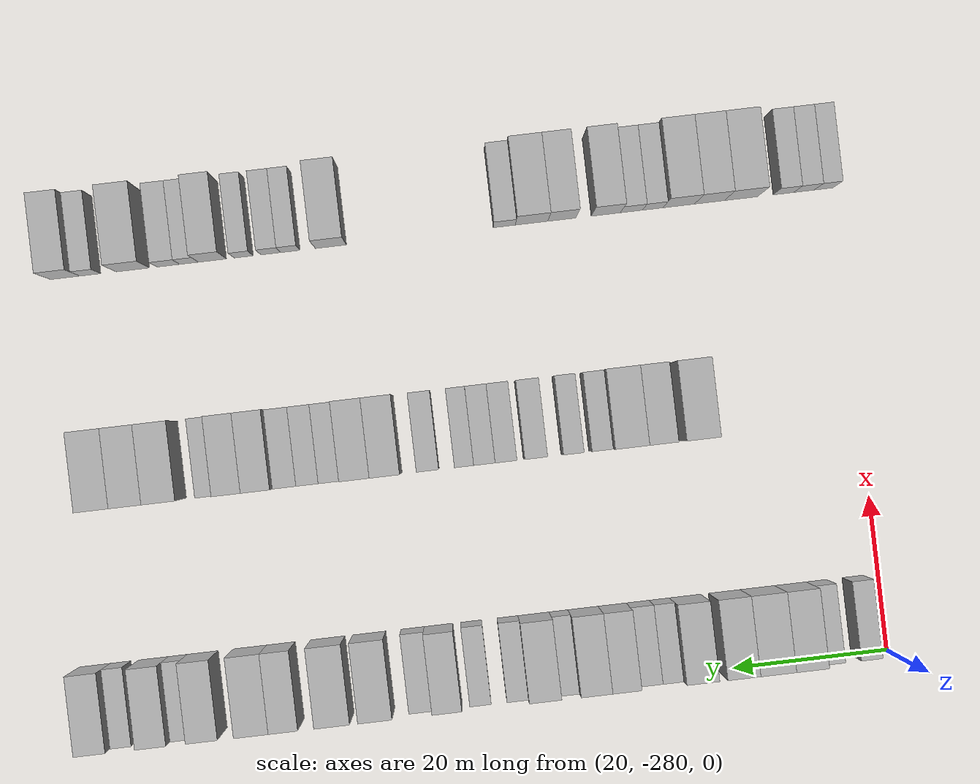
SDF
<sdf version="1.6">
 <world name="default">
  <model name="building_1">
   <static>1</static>
   <pose>25.0000 -276.6459 0 0.000000 0.000000 0.000000</pose>
   <link name="link">
    <pose>0 0 3.00 0 0 0</pose>
    <collision name="collision"><geometry><box><size>10.0000 2.7081 6.0000</size></box></geometry></collision>
    <visual name="visual">
     <cast_shadows>0</cast_shadows>
     <geometry><box><size>10.0000 2.7081 6.0000</size></box></geometry>
     <material>
      <script>
       <uri>model://HANNAS_wall/materials/scripts</uri>
       <uri>model://HANNAS_wall/materials/textures</uri>
       <name>vrc/HANNAS_wall</name>
      </script>
     </material>
    </visual>
   </link>
  </model>
  <model name="building_2">
   <static>1</static>
   <pose>25.0000 -271.9616 0 0.000000 0.000000 0.000000</pose>
   <link name="link">
    <pose>0 0 3.00 0 0 0</pose>
    <collision name="collision"><geometry><box><size>10.0000 2.6605 6.0000</size></box></geometry></collision>
    <visual name="visual">
     <cast_shadows>0</cast_shadows>
     <geometry><box><size>10.0000 2.6605 6.0000</size></box></geometry>
     <material>
      <script>
       <uri>model://HANNAS_wall/materials/scripts</uri>
       <uri>model://HANNAS_wall/materials/textures</uri>
       <name>vrc/HANNAS_wall</name>
      </script>
     </material>
    </visual>
   </link>
  </model>
  <model name="building_3">
   <static>1</static>
   <pose>25.0000 -268.5851 0 0.000000 0.000000 0.000000</pose>
   <link name="link">
    <pose>0 0 4.50 0 0 0</pose>
    <collision name="collision"><geometry><box><size>10.0000 4.0925 9.0000</size></box></geometry></collision>
    <visual name="visual">
     <cast_shadows>0</cast_shadows>
     <geometry><box><size>10.0000 4.0925 9.0000</size></box></geometry>
     <material>
      <script>
       <uri>model://HANNAS_wall/materials/scripts</uri>
       <uri>model://HANNAS_wall/materials/textures</uri>
       <name>vrc/HANNAS_wall</name>
      </script>
     </material>
    </visual>
   </link>
  </model>
  <model name="building_4">
   <static>1</static>
   <pose>25.0000 -264.3057 0 0.000000 0.000000 0.000000</pose>
   <link name="link">
    <pose>0 0 4.50 0 0 0</pose>
    <collision name="collision"><geometry><box><size>10.0000 4.4662 9.0000</size></box></geometry></collision>
    <visual name="visual">
     <cast_shadows>0</cast_shadows>
     <geometry><box><size>10.0000 4.4662 9.0000</size></box></geometry>
     <material>
      <script>
       <uri>model://HANNAS_wall/materials/scripts</uri>
       <uri>model://HANNAS_wall/materials/textures</uri>
       <name>vrc/HANNAS_wall</name>
      </script>
     </material>
    </visual>
   </link>
  </model>
  <model name="building_5">
   <static>1</static>
   <pose>25.0000 -260.0190 0 0.000000 0.000000 0.000000</pose>
   <link name="link">
    <pose>0 0 4.50 0 0 0</pose>
    <collision name="collision"><geometry><box><size>10.0000 4.1072 9.0000</size></box></geometry></collision>
    <visual name="visual">
     <cast_shadows>0</cast_shadows>
     <geometry><box><size>10.0000 4.1072 9.0000</size></box></geometry>
     <material>
      <script>
       <uri>model://HANNAS_wall/materials/scripts</uri>
       <uri>model://HANNAS_wall/materials/textures</uri>
       <name>vrc/HANNAS_wall</name>
      </script>
     </material>
    </visual>
   </link>
  </model>
  <model name="building_6">
   <static>1</static>
   <pose>25.0000 -254.9210 0 0.000000 0.000000 0.000000</pose>
   <link name="link">
    <pose>0 0 4.50 0 0 0</pose>
    <collision name="collision"><geometry><box><size>10.0000 4.0887 9.0000</size></box></geometry></collision>
    <visual name="visual">
     <cast_shadows>0</cast_shadows>
     <geometry><box><size>10.0000 4.0887 9.0000</size></box></geometry>
     <material>
      <script>
       <uri>model://HANNAS_wall/materials/scripts</uri>
       <uri>model://HANNAS_wall/materials/textures</uri>
       <name>vrc/HANNAS_wall</name>
      </script>
     </material>
    </visual>
   </link>
  </model>
  <model name="building_7">
   <static>1</static>
   <pose>25.0000 -251.5655 0 0.000000 0.000000 0.000000</pose>
   <link name="link">
    <pose>0 0 3.00 0 0 0</pose>
    <collision name="collision"><geometry><box><size>10.0000 2.6223 6.0000</size></box></geometry></collision>
    <visual name="visual">
     <cast_shadows>0</cast_shadows>
     <geometry><box><size>10.0000 2.6223 6.0000</size></box></geometry>
     <material>
      <script>
       <uri>model://HANNAS_wall/materials/scripts</uri>
       <uri>model://HANNAS_wall/materials/textures</uri>
       <name>vrc/HANNAS_wall</name>
      </script>
     </material>
    </visual>
   </link>
  </model>
  <model name="building_8">
   <static>1</static>
   <pose>25.0000 -248.7749 0 0.000000 0.000000 0.000000</pose>
   <link name="link">
    <pose>0 0 3.00 0 0 0</pose>
    <collision name="collision"><geometry><box><size>10.0000 2.9590 6.0000</size></box></geometry></collision>
    <visual name="visual">
     <cast_shadows>0</cast_shadows>
     <geometry><box><size>10.0000 2.9590 6.0000</size></box></geometry>
     <material>
      <script>
       <uri>model://HANNAS_wall/materials/scripts</uri>
       <uri>model://HANNAS_wall/materials/textures</uri>
       <name>vrc/HANNAS_wall</name>
      </script>
     </material>
    </visual>
   </link>
  </model>
  <model name="building_9">
   <static>1</static>
   <pose>25.0000 -245.4770 0 0.000000 0.000000 0.000000</pose>
   <link name="link">
    <pose>0 0 4.50 0 0 0</pose>
    <collision name="collision"><geometry><box><size>10.0000 3.6368 9.0000</size></box></geometry></collision>
    <visual name="visual">
     <cast_shadows>0</cast_shadows>
     <geometry><box><size>10.0000 3.6368 9.0000</size></box></geometry>
     <material>
      <script>
       <uri>model://HANNAS_wall/materials/scripts</uri>
       <uri>model://HANNAS_wall/materials/textures</uri>
       <name>vrc/HANNAS_wall</name>
      </script>
     </material>
    </visual>
   </link>
  </model>
  <model name="building_10">
   <static>1</static>
   <pose>25.0000 -241.6907 0 0.000000 0.000000 0.000000</pose>
   <link name="link">
    <pose>0 0 4.50 0 0 0</pose>
    <collision name="collision"><geometry><box><size>10.0000 3.9358 9.0000</size></box></geometry></collision>
    <visual name="visual">
     <cast_shadows>0</cast_shadows>
     <geometry><box><size>10.0000 3.9358 9.0000</size></box></geometry>
     <material>
      <script>
       <uri>model://HANNAS_wall/materials/scripts</uri>
       <uri>model://HANNAS_wall/materials/textures</uri>
       <name>vrc/HANNAS_wall</name>
      </script>
     </material>
    </visual>
   </link>
  </model>
  <model name="building_11">
   <static>1</static>
   <pose>25.0000 -238.5181 0 0.000000 0.000000 0.000000</pose>
   <link name="link">
    <pose>0 0 3.00 0 0 0</pose>
    <collision name="collision"><geometry><box><size>10.0000 2.4093 6.0000</size></box></geometry></collision>
    <visual name="visual">
     <cast_shadows>0</cast_shadows>
     <geometry><box><size>10.0000 2.4093 6.0000</size></box></geometry>
     <material>
      <script>
       <uri>model://HANNAS_wall/materials/scripts</uri>
       <uri>model://HANNAS_wall/materials/textures</uri>
       <name>vrc/HANNAS_wall</name>
      </script>
     </material>
    </visual>
   </link>
  </model>
  <model name="building_12">
   <static>1</static>
   <pose>25.0000 -235.2913 0 0.000000 0.000000 0.000000</pose>
   <link name="link">
    <pose>0 0 4.50 0 0 0</pose>
    <collision name="collision"><geometry><box><size>10.0000 4.0443 9.0000</size></box></geometry></collision>
    <visual name="visual">
     <cast_shadows>0</cast_shadows>
     <geometry><box><size>10.0000 4.0443 9.0000</size></box></geometry>
     <material>
      <script>
       <uri>model://HANNAS_wall/materials/scripts</uri>
       <uri>model://HANNAS_wall/materials/textures</uri>
       <name>vrc/HANNAS_wall</name>
      </script>
     </material>
    </visual>
   </link>
  </model>
  <model name="building_13">
   <static>1</static>
   <pose>25.0000 -231.9161 0 0.000000 0.000000 0.000000</pose>
   <link name="link">
    <pose>0 0 3.00 0 0 0</pose>
    <collision name="collision"><geometry><box><size>10.0000 2.7061 6.0000</size></box></geometry></collision>
    <visual name="visual">
     <cast_shadows>0</cast_shadows>
     <geometry><box><size>10.0000 2.7061 6.0000</size></box></geometry>
     <material>
      <script>
       <uri>model://HANNAS_wall/materials/scripts</uri>
       <uri>model://HANNAS_wall/materials/textures</uri>
       <name>vrc/HANNAS_wall</name>
      </script>
     </material>
    </visual>
   </link>
  </model>
  <model name="building_14">
   <static>1</static>
   <pose>25.0000 -227.2116 0 0.000000 0.000000 0.000000</pose>
   <link name="link">
    <pose>0 0 3.00 0 0 0</pose>
    <collision name="collision"><geometry><box><size>10.0000 2.7027 6.0000</size></box></geometry></collision>
    <visual name="visual">
     <cast_shadows>0</cast_shadows>
     <geometry><box><size>10.0000 2.7027 6.0000</size></box></geometry>
     <material>
      <script>
       <uri>model://HANNAS_wall/materials/scripts</uri>
       <uri>model://HANNAS_wall/materials/textures</uri>
       <name>vrc/HANNAS_wall</name>
      </script>
     </material>
    </visual>
   </link>
  </model>
  <model name="building_15">
   <static>1</static>
   <pose>25.0000 -222.9976 0 0.000000 0.000000 0.000000</pose>
   <link name="link">
    <pose>0 0 4.50 0 0 0</pose>
    <collision name="collision"><geometry><box><size>10.0000 3.7254 9.0000</size></box></geometry></collision>
    <visual name="visual">
     <cast_shadows>0</cast_shadows>
     <geometry><box><size>10.0000 3.7254 9.0000</size></box></geometry>
     <material>
      <script>
       <uri>model://HANNAS_wall/materials/scripts</uri>
       <uri>model://HANNAS_wall/materials/textures</uri>
       <name>vrc/HANNAS_wall</name>
      </script>
     </material>
    </visual>
   </link>
  </model>
  <model name="building_16">
   <static>1</static>
   <pose>25.0000 -219.6483 0 0.000000 0.000000 0.000000</pose>
   <link name="link">
    <pose>0 0 3.00 0 0 0</pose>
    <collision name="collision"><geometry><box><size>10.0000 2.9733 6.0000</size></box></geometry></collision>
    <visual name="visual">
     <cast_shadows>0</cast_shadows>
     <geometry><box><size>10.0000 2.9733 6.0000</size></box></geometry>
     <material>
      <script>
       <uri>model://HANNAS_wall/materials/scripts</uri>
       <uri>model://HANNAS_wall/materials/textures</uri>
       <name>vrc/HANNAS_wall</name>
      </script>
     </material>
    </visual>
   </link>
  </model>
  <model name="building_17">
   <static>1</static>
   <pose>25.0000 -214.0251 0 0.000000 0.000000 0.000000</pose>
   <link name="link">
    <pose>0 0 4.50 0 0 0</pose>
    <collision name="collision"><geometry><box><size>10.0000 4.2729 9.0000</size></box></geometry></collision>
    <visual name="visual">
     <cast_shadows>0</cast_shadows>
     <geometry><box><size>10.0000 4.2729 9.0000</size></box></geometry>
     <material>
      <script>
       <uri>model://HANNAS_wall/materials/scripts</uri>
       <uri>model://HANNAS_wall/materials/textures</uri>
       <name>vrc/HANNAS_wall</name>
      </script>
     </material>
    </visual>
   </link>
  </model>
  <model name="building_18">
   <static>1</static>
   <pose>25.0000 -208.6609 0 0.000000 0.000000 0.000000</pose>
   <link name="link">
    <pose>0 0 4.50 0 0 0</pose>
    <collision name="collision"><geometry><box><size>10.0000 4.4556 9.0000</size></box></geometry></collision>
    <visual name="visual">
     <cast_shadows>0</cast_shadows>
     <geometry><box><size>10.0000 4.4556 9.0000</size></box></geometry>
     <material>
      <script>
       <uri>model://HANNAS_wall/materials/scripts</uri>
       <uri>model://HANNAS_wall/materials/textures</uri>
       <name>vrc/HANNAS_wall</name>
      </script>
     </material>
    </visual>
   </link>
  </model>
  <model name="building_19">
   <static>1</static>
   <pose>25.0000 -202.5923 0 0.000000 0.000000 0.000000</pose>
   <link name="link">
    <pose>0 0 4.50 0 0 0</pose>
    <collision name="collision"><geometry><box><size>10.0000 3.6817 9.0000</size></box></geometry></collision>
    <visual name="visual">
     <cast_shadows>0</cast_shadows>
     <geometry><box><size>10.0000 3.6817 9.0000</size></box></geometry>
     <material>
      <script>
       <uri>model://HANNAS_wall/materials/scripts</uri>
       <uri>model://HANNAS_wall/materials/textures</uri>
       <name>vrc/HANNAS_wall</name>
      </script>
     </material>
    </visual>
   </link>
  </model>
  <model name="building_20">
   <static>1</static>
   <pose>25.0000 -198.5943 0 0.000000 0.000000 0.000000</pose>
   <link name="link">
    <pose>0 0 4.50 0 0 0</pose>
    <collision name="collision"><geometry><box><size>10.0000 4.3144 9.0000</size></box></geometry></collision>
    <visual name="visual">
     <cast_shadows>0</cast_shadows>
     <geometry><box><size>10.0000 4.3144 9.0000</size></box></geometry>
     <material>
      <script>
       <uri>model://HANNAS_wall/materials/scripts</uri>
       <uri>model://HANNAS_wall/materials/textures</uri>
       <name>vrc/HANNAS_wall</name>
      </script>
     </material>
    </visual>
   </link>
  </model>
  <model name="building_21">
   <static>1</static>
   <pose>25.0000 -192.4441 0 0.000000 0.000000 0.000000</pose>
   <link name="link">
    <pose>0 0 4.50 0 0 0</pose>
    <collision name="collision"><geometry><box><size>10.0000 3.9859 9.0000</size></box></geometry></collision>
    <visual name="visual">
     <cast_shadows>0</cast_shadows>
     <geometry><box><size>10.0000 3.9859 9.0000</size></box></geometry>
     <material>
      <script>
       <uri>model://HANNAS_wall/materials/scripts</uri>
       <uri>model://HANNAS_wall/materials/textures</uri>
       <name>vrc/HANNAS_wall</name>
      </script>
     </material>
    </visual>
   </link>
  </model>
  <model name="building_22">
   <static>1</static>
   <pose>25.0000 -189.2357 0 0.000000 0.000000 0.000000</pose>
   <link name="link">
    <pose>0 0 3.00 0 0 0</pose>
    <collision name="collision"><geometry><box><size>10.0000 2.4310 6.0000</size></box></geometry></collision>
    <visual name="visual">
     <cast_shadows>0</cast_shadows>
     <geometry><box><size>10.0000 2.4310 6.0000</size></box></geometry>
     <material>
      <script>
       <uri>model://HANNAS_wall/materials/scripts</uri>
       <uri>model://HANNAS_wall/materials/textures</uri>
       <name>vrc/HANNAS_wall</name>
      </script>
     </material>
    </visual>
   </link>
  </model>
  <model name="building_23">
   <static>1</static>
   <pose>25.0000 -186.0730 0 0.000000 0.000000 0.000000</pose>
   <link name="link">
    <pose>0 0 4.50 0 0 0</pose>
    <collision name="collision"><geometry><box><size>10.0000 3.8945 9.0000</size></box></geometry></collision>
    <visual name="visual">
     <cast_shadows>0</cast_shadows>
     <geometry><box><size>10.0000 3.8945 9.0000</size></box></geometry>
     <material>
      <script>
       <uri>model://HANNAS_wall/materials/scripts</uri>
       <uri>model://HANNAS_wall/materials/textures</uri>
       <name>vrc/HANNAS_wall</name>
      </script>
     </material>
    </visual>
   </link>
  </model>
  <model name="building_24">
   <static>1</static>
   <pose>25.0000 -181.7934 0 0.000000 0.000000 0.000000</pose>
   <link name="link">
    <pose>0 0 3.00 0 0 0</pose>
    <collision name="collision"><geometry><box><size>10.0000 2.6648 6.0000</size></box></geometry></collision>
    <visual name="visual">
     <cast_shadows>0</cast_shadows>
     <geometry><box><size>10.0000 2.6648 6.0000</size></box></geometry>
     <material>
      <script>
       <uri>model://HANNAS_wall/materials/scripts</uri>
       <uri>model://HANNAS_wall/materials/textures</uri>
       <name>vrc/HANNAS_wall</name>
      </script>
     </material>
    </visual>
   </link>
  </model>
  <model name="building_25">
   <static>1</static>
   <pose>25.0000 -178.4690 0 0.000000 0.000000 0.000000</pose>
   <link name="link">
    <pose>0 0 4.50 0 0 0</pose>
    <collision name="collision"><geometry><box><size>10.0000 3.9839 9.0000</size></box></geometry></collision>
    <visual name="visual">
     <cast_shadows>0</cast_shadows>
     <geometry><box><size>10.0000 3.9839 9.0000</size></box></geometry>
     <material>
      <script>
       <uri>model://HANNAS_wall/materials/scripts</uri>
       <uri>model://HANNAS_wall/materials/textures</uri>
       <name>vrc/HANNAS_wall</name>
      </script>
     </material>
    </visual>
   </link>
  </model>
  <model name="building_143">
   <static>1</static>
   <pose>55.0000 -258.5437 0 0.000000 0.000000 0.000000</pose>
   <link name="link">
    <pose>0 0 4.50 0 0 0</pose>
    <collision name="collision"><geometry><box><size>10.0000 4.3042 9.0000</size></box></geometry></collision>
    <visual name="visual">
     <cast_shadows>0</cast_shadows>
     <geometry><box><size>10.0000 4.3042 9.0000</size></box></geometry>
     <material>
      <script>
       <uri>model://HANNAS_wall/materials/scripts</uri>
       <uri>model://HANNAS_wall/materials/textures</uri>
       <name>vrc/HANNAS_wall</name>
      </script>
     </material>
    </visual>
   </link>
  </model>
  <model name="building_144">
   <static>1</static>
   <pose>55.0000 -253.5834 0 0.000000 0.000000 0.000000</pose>
   <link name="link">
    <pose>0 0 4.50 0 0 0</pose>
    <collision name="collision"><geometry><box><size>10.0000 3.6164 9.0000</size></box></geometry></collision>
    <visual name="visual">
     <cast_shadows>0</cast_shadows>
     <geometry><box><size>10.0000 3.6164 9.0000</size></box></geometry>
     <material>
      <script>
       <uri>model://HANNAS_wall/materials/scripts</uri>
       <uri>model://HANNAS_wall/materials/textures</uri>
       <name>vrc/HANNAS_wall</name>
      </script>
     </material>
    </visual>
   </link>
  </model>
  <model name="building_145">
   <static>1</static>
   <pose>55.0000 -249.6335 0 0.000000 0.000000 0.000000</pose>
   <link name="link">
    <pose>0 0 4.50 0 0 0</pose>
    <collision name="collision"><geometry><box><size>10.0000 4.2835 9.0000</size></box></geometry></collision>
    <visual name="visual">
     <cast_shadows>0</cast_shadows>
     <geometry><box><size>10.0000 4.2835 9.0000</size></box></geometry>
     <material>
      <script>
       <uri>model://HANNAS_wall/materials/scripts</uri>
       <uri>model://HANNAS_wall/materials/textures</uri>
       <name>vrc/HANNAS_wall</name>
      </script>
     </material>
    </visual>
   </link>
  </model>
  <model name="building_146">
   <static>1</static>
   <pose>55.0000 -246.1513 0 0.000000 0.000000 0.000000</pose>
   <link name="link">
    <pose>0 0 3.00 0 0 0</pose>
    <collision name="collision"><geometry><box><size>10.0000 2.6807 6.0000</size></box></geometry></collision>
    <visual name="visual">
     <cast_shadows>0</cast_shadows>
     <geometry><box><size>10.0000 2.6807 6.0000</size></box></geometry>
     <material>
      <script>
       <uri>model://HANNAS_wall/materials/scripts</uri>
       <uri>model://HANNAS_wall/materials/textures</uri>
       <name>vrc/HANNAS_wall</name>
      </script>
     </material>
    </visual>
   </link>
  </model>
  <model name="building_147">
   <static>1</static>
   <pose>55.0000 -242.5061 0 0.000000 0.000000 0.000000</pose>
   <link name="link">
    <pose>0 0 3.00 0 0 0</pose>
    <collision name="collision"><geometry><box><size>10.0000 2.6097 6.0000</size></box></geometry></collision>
    <visual name="visual">
     <cast_shadows>0</cast_shadows>
     <geometry><box><size>10.0000 2.6097 6.0000</size></box></geometry>
     <material>
      <script>
       <uri>model://HANNAS_wall/materials/scripts</uri>
       <uri>model://HANNAS_wall/materials/textures</uri>
       <name>vrc/HANNAS_wall</name>
      </script>
     </material>
    </visual>
   </link>
  </model>
  <model name="building_148">
   <static>1</static>
   <pose>55.0000 -237.7639 0 0.000000 0.000000 0.000000</pose>
   <link name="link">
    <pose>0 0 3.00 0 0 0</pose>
    <collision name="collision"><geometry><box><size>10.0000 2.8748 6.0000</size></box></geometry></collision>
    <visual name="visual">
     <cast_shadows>0</cast_shadows>
     <geometry><box><size>10.0000 2.8748 6.0000</size></box></geometry>
     <material>
      <script>
       <uri>model://HANNAS_wall/materials/scripts</uri>
       <uri>model://HANNAS_wall/materials/textures</uri>
       <name>vrc/HANNAS_wall</name>
      </script>
     </material>
    </visual>
   </link>
  </model>
  <model name="building_149">
   <static>1</static>
   <pose>55.0000 -233.9491 0 0.000000 0.000000 0.000000</pose>
   <link name="link">
    <pose>0 0 3.00 0 0 0</pose>
    <collision name="collision"><geometry><box><size>10.0000 2.7548 6.0000</size></box></geometry></collision>
    <visual name="visual">
     <cast_shadows>0</cast_shadows>
     <geometry><box><size>10.0000 2.7548 6.0000</size></box></geometry>
     <material>
      <script>
       <uri>model://HANNAS_wall/materials/scripts</uri>
       <uri>model://HANNAS_wall/materials/textures</uri>
       <name>vrc/HANNAS_wall</name>
      </script>
     </material>
    </visual>
   </link>
  </model>
  <model name="building_150">
   <static>1</static>
   <pose>55.0000 -231.2156 0 0.000000 0.000000 0.000000</pose>
   <link name="link">
    <pose>0 0 3.00 0 0 0</pose>
    <collision name="collision"><geometry><box><size>10.0000 2.7122 6.0000</size></box></geometry></collision>
    <visual name="visual">
     <cast_shadows>0</cast_shadows>
     <geometry><box><size>10.0000 2.7122 6.0000</size></box></geometry>
     <material>
      <script>
       <uri>model://HANNAS_wall/materials/scripts</uri>
       <uri>model://HANNAS_wall/materials/textures</uri>
       <name>vrc/HANNAS_wall</name>
      </script>
     </material>
    </visual>
   </link>
  </model>
  <model name="building_151">
   <static>1</static>
   <pose>55.0000 -228.6480 0 0.000000 0.000000 0.000000</pose>
   <link name="link">
    <pose>0 0 3.00 0 0 0</pose>
    <collision name="collision"><geometry><box><size>10.0000 2.4229 6.0000</size></box></geometry></collision>
    <visual name="visual">
     <cast_shadows>0</cast_shadows>
     <geometry><box><size>10.0000 2.4229 6.0000</size></box></geometry>
     <material>
      <script>
       <uri>model://HANNAS_wall/materials/scripts</uri>
       <uri>model://HANNAS_wall/materials/textures</uri>
       <name>vrc/HANNAS_wall</name>
      </script>
     </material>
    </visual>
   </link>
  </model>
  <model name="building_152">
   <static>1</static>
   <pose>55.0000 -224.0296 0 0.000000 0.000000 0.000000</pose>
   <link name="link">
    <pose>0 0 3.00 0 0 0</pose>
    <collision name="collision"><geometry><box><size>10.0000 2.8141 6.0000</size></box></geometry></collision>
    <visual name="visual">
     <cast_shadows>0</cast_shadows>
     <geometry><box><size>10.0000 2.8141 6.0000</size></box></geometry>
     <material>
      <script>
       <uri>model://HANNAS_wall/materials/scripts</uri>
       <uri>model://HANNAS_wall/materials/textures</uri>
       <name>vrc/HANNAS_wall</name>
      </script>
     </material>
    </visual>
   </link>
  </model>
  <model name="building_153">
   <static>1</static>
   <pose>55.0000 -218.7284 0 0.000000 0.000000 0.000000</pose>
   <link name="link">
    <pose>0 0 4.50 0 0 0</pose>
    <collision name="collision"><geometry><box><size>10.0000 3.7883 9.0000</size></box></geometry></collision>
    <visual name="visual">
     <cast_shadows>0</cast_shadows>
     <geometry><box><size>10.0000 3.7883 9.0000</size></box></geometry>
     <material>
      <script>
       <uri>model://HANNAS_wall/materials/scripts</uri>
       <uri>model://HANNAS_wall/materials/textures</uri>
       <name>vrc/HANNAS_wall</name>
      </script>
     </material>
    </visual>
   </link>
  </model>
  <model name="building_154">
   <static>1</static>
   <pose>55.0000 -214.9421 0 0.000000 0.000000 0.000000</pose>
   <link name="link">
    <pose>0 0 4.50 0 0 0</pose>
    <collision name="collision"><geometry><box><size>10.0000 3.7843 9.0000</size></box></geometry></collision>
    <visual name="visual">
     <cast_shadows>0</cast_shadows>
     <geometry><box><size>10.0000 3.7843 9.0000</size></box></geometry>
     <material>
      <script>
       <uri>model://HANNAS_wall/materials/scripts</uri>
       <uri>model://HANNAS_wall/materials/textures</uri>
       <name>vrc/HANNAS_wall</name>
      </script>
     </material>
    </visual>
   </link>
  </model>
  <model name="building_155">
   <static>1</static>
   <pose>55.0000 -211.6411 0 0.000000 0.000000 0.000000</pose>
   <link name="link">
    <pose>0 0 3.00 0 0 0</pose>
    <collision name="collision"><geometry><box><size>10.0000 2.8177 6.0000</size></box></geometry></collision>
    <visual name="visual">
     <cast_shadows>0</cast_shadows>
     <geometry><box><size>10.0000 2.8177 6.0000</size></box></geometry>
     <material>
      <script>
       <uri>model://HANNAS_wall/materials/scripts</uri>
       <uri>model://HANNAS_wall/materials/textures</uri>
       <name>vrc/HANNAS_wall</name>
      </script>
     </material>
    </visual>
   </link>
  </model>
  <model name="building_156">
   <static>1</static>
   <pose>55.0000 -208.8256 0 0.000000 0.000000 0.000000</pose>
   <link name="link">
    <pose>0 0 3.00 0 0 0</pose>
    <collision name="collision"><geometry><box><size>10.0000 2.8135 6.0000</size></box></geometry></collision>
    <visual name="visual">
     <cast_shadows>0</cast_shadows>
     <geometry><box><size>10.0000 2.8135 6.0000</size></box></geometry>
     <material>
      <script>
       <uri>model://HANNAS_wall/materials/scripts</uri>
       <uri>model://HANNAS_wall/materials/textures</uri>
       <name>vrc/HANNAS_wall</name>
      </script>
     </material>
    </visual>
   </link>
  </model>
  <model name="building_157">
   <static>1</static>
   <pose>55.0000 -205.9341 0 0.000000 0.000000 0.000000</pose>
   <link name="link">
    <pose>0 0 3.00 0 0 0</pose>
    <collision name="collision"><geometry><box><size>10.0000 2.9695 6.0000</size></box></geometry></collision>
    <visual name="visual">
     <cast_shadows>0</cast_shadows>
     <geometry><box><size>10.0000 2.9695 6.0000</size></box></geometry>
     <material>
      <script>
       <uri>model://HANNAS_wall/materials/scripts</uri>
       <uri>model://HANNAS_wall/materials/textures</uri>
       <name>vrc/HANNAS_wall</name>
      </script>
     </material>
    </visual>
   </link>
  </model>
  <model name="building_158">
   <static>1</static>
   <pose>55.0000 -202.6234 0 0.000000 0.000000 0.000000</pose>
   <link name="link">
    <pose>0 0 4.50 0 0 0</pose>
    <collision name="collision"><geometry><box><size>10.0000 3.6519 9.0000</size></box></geometry></collision>
    <visual name="visual">
     <cast_shadows>0</cast_shadows>
     <geometry><box><size>10.0000 3.6519 9.0000</size></box></geometry>
     <material>
      <script>
       <uri>model://HANNAS_wall/materials/scripts</uri>
       <uri>model://HANNAS_wall/materials/textures</uri>
       <name>vrc/HANNAS_wall</name>
      </script>
     </material>
    </visual>
   </link>
  </model>
  <model name="building_159">
   <static>1</static>
   <pose>55.0000 -198.9835 0 0.000000 0.000000 0.000000</pose>
   <link name="link">
    <pose>0 0 4.50 0 0 0</pose>
    <collision name="collision"><geometry><box><size>10.0000 3.6279 9.0000</size></box></geometry></collision>
    <visual name="visual">
     <cast_shadows>0</cast_shadows>
     <geometry><box><size>10.0000 3.6279 9.0000</size></box></geometry>
     <material>
      <script>
       <uri>model://HANNAS_wall/materials/scripts</uri>
       <uri>model://HANNAS_wall/materials/textures</uri>
       <name>vrc/HANNAS_wall</name>
      </script>
     </material>
    </visual>
   </link>
  </model>
  <model name="building_160">
   <static>1</static>
   <pose>55.0000 -195.9154 0 0.000000 0.000000 0.000000</pose>
   <link name="link">
    <pose>0 0 3.00 0 0 0</pose>
    <collision name="collision"><geometry><box><size>10.0000 2.5082 6.0000</size></box></geometry></collision>
    <visual name="visual">
     <cast_shadows>0</cast_shadows>
     <geometry><box><size>10.0000 2.5082 6.0000</size></box></geometry>
     <material>
      <script>
       <uri>model://HANNAS_wall/materials/scripts</uri>
       <uri>model://HANNAS_wall/materials/textures</uri>
       <name>vrc/HANNAS_wall</name>
      </script>
     </material>
    </visual>
   </link>
  </model>
  <model name="building_161">
   <static>1</static>
   <pose>55.0000 -190.5537 0 0.000000 0.000000 0.000000</pose>
   <link name="link">
    <pose>0 0 4.50 0 0 0</pose>
    <collision name="collision"><geometry><box><size>10.0000 4.2152 9.0000</size></box></geometry></collision>
    <visual name="visual">
     <cast_shadows>0</cast_shadows>
     <geometry><box><size>10.0000 4.2152 9.0000</size></box></geometry>
     <material>
      <script>
       <uri>model://HANNAS_wall/materials/scripts</uri>
       <uri>model://HANNAS_wall/materials/textures</uri>
       <name>vrc/HANNAS_wall</name>
      </script>
     </material>
    </visual>
   </link>
  </model>
  <model name="building_162">
   <static>1</static>
   <pose>55.0000 -186.3997 0 0.000000 0.000000 0.000000</pose>
   <link name="link">
    <pose>0 0 4.50 0 0 0</pose>
    <collision name="collision"><geometry><box><size>10.0000 4.0928 9.0000</size></box></geometry></collision>
    <visual name="visual">
     <cast_shadows>0</cast_shadows>
     <geometry><box><size>10.0000 4.0928 9.0000</size></box></geometry>
     <material>
      <script>
       <uri>model://HANNAS_wall/materials/scripts</uri>
       <uri>model://HANNAS_wall/materials/textures</uri>
       <name>vrc/HANNAS_wall</name>
      </script>
     </material>
    </visual>
   </link>
  </model>
  <model name="building_163">
   <static>1</static>
   <pose>55.0000 -182.1803 0 0.000000 0.000000 0.000000</pose>
   <link name="link">
    <pose>0 0 4.50 0 0 0</pose>
    <collision name="collision"><geometry><box><size>10.0000 4.3460 9.0000</size></box></geometry></collision>
    <visual name="visual">
     <cast_shadows>0</cast_shadows>
     <geometry><box><size>10.0000 4.3460 9.0000</size></box></geometry>
     <material>
      <script>
       <uri>model://HANNAS_wall/materials/scripts</uri>
       <uri>model://HANNAS_wall/materials/textures</uri>
       <name>vrc/HANNAS_wall</name>
      </script>
     </material>
    </visual>
   </link>
  </model>
  <model name="building_281">
   <static>1</static>
   <pose>85.0000 -278.7773 0 0.000000 0.000000 0.000000</pose>
   <link name="link">
    <pose>0 0 3.00 0 0 0</pose>
    <collision name="collision"><geometry><box><size>10.0000 2.4455 6.0000</size></box></geometry></collision>
    <visual name="visual">
     <cast_shadows>0</cast_shadows>
     <geometry><box><size>10.0000 2.4455 6.0000</size></box></geometry>
     <material>
      <script>
       <uri>model://HANNAS_wall/materials/scripts</uri>
       <uri>model://HANNAS_wall/materials/textures</uri>
       <name>vrc/HANNAS_wall</name>
      </script>
     </material>
    </visual>
   </link>
  </model>
  <model name="building_282">
   <static>1</static>
   <pose>85.0000 -276.2288 0 0.000000 0.000000 0.000000</pose>
   <link name="link">
    <pose>0 0 3.00 0 0 0</pose>
    <collision name="collision"><geometry><box><size>10.0000 2.6514 6.0000</size></box></geometry></collision>
    <visual name="visual">
     <cast_shadows>0</cast_shadows>
     <geometry><box><size>10.0000 2.6514 6.0000</size></box></geometry>
     <material>
      <script>
       <uri>model://HANNAS_wall/materials/scripts</uri>
       <uri>model://HANNAS_wall/materials/textures</uri>
       <name>vrc/HANNAS_wall</name>
      </script>
     </material>
    </visual>
   </link>
  </model>
  <model name="building_283">
   <static>1</static>
   <pose>85.0000 -273.5639 0 0.000000 0.000000 0.000000</pose>
   <link name="link">
    <pose>0 0 3.00 0 0 0</pose>
    <collision name="collision"><geometry><box><size>10.0000 2.6783 6.0000</size></box></geometry></collision>
    <visual name="visual">
     <cast_shadows>0</cast_shadows>
     <geometry><box><size>10.0000 2.6783 6.0000</size></box></geometry>
     <material>
      <script>
       <uri>model://HANNAS_wall/materials/scripts</uri>
       <uri>model://HANNAS_wall/materials/textures</uri>
       <name>vrc/HANNAS_wall</name>
      </script>
     </material>
    </visual>
   </link>
  </model>
  <model name="building_284">
   <static>1</static>
   <pose>85.0000 -268.0777 0 0.000000 0.000000 0.000000</pose>
   <link name="link">
    <pose>0 0 4.50 0 0 0</pose>
    <collision name="collision"><geometry><box><size>10.0000 4.2941 9.0000</size></box></geometry></collision>
    <visual name="visual">
     <cast_shadows>0</cast_shadows>
     <geometry><box><size>10.0000 4.2941 9.0000</size></box></geometry>
     <material>
      <script>
       <uri>model://HANNAS_wall/materials/scripts</uri>
       <uri>model://HANNAS_wall/materials/textures</uri>
       <name>vrc/HANNAS_wall</name>
      </script>
     </material>
    </visual>
   </link>
  </model>
  <model name="building_285">
   <static>1</static>
   <pose>85.0000 -263.9915 0 0.000000 0.000000 0.000000</pose>
   <link name="link">
    <pose>0 0 4.50 0 0 0</pose>
    <collision name="collision"><geometry><box><size>10.0000 3.8784 9.0000</size></box></geometry></collision>
    <visual name="visual">
     <cast_shadows>0</cast_shadows>
     <geometry><box><size>10.0000 3.8784 9.0000</size></box></geometry>
     <material>
      <script>
       <uri>model://HANNAS_wall/materials/scripts</uri>
       <uri>model://HANNAS_wall/materials/textures</uri>
       <name>vrc/HANNAS_wall</name>
      </script>
     </material>
    </visual>
   </link>
  </model>
  <model name="building_286">
   <static>1</static>
   <pose>85.0000 -259.9943 0 0.000000 0.000000 0.000000</pose>
   <link name="link">
    <pose>0 0 4.50 0 0 0</pose>
    <collision name="collision"><geometry><box><size>10.0000 4.1159 9.0000</size></box></geometry></collision>
    <visual name="visual">
     <cast_shadows>0</cast_shadows>
     <geometry><box><size>10.0000 4.1159 9.0000</size></box></geometry>
     <material>
      <script>
       <uri>model://HANNAS_wall/materials/scripts</uri>
       <uri>model://HANNAS_wall/materials/textures</uri>
       <name>vrc/HANNAS_wall</name>
      </script>
     </material>
    </visual>
   </link>
  </model>
  <model name="building_287">
   <static>1</static>
   <pose>85.0000 -256.6121 0 0.000000 0.000000 0.000000</pose>
   <link name="link">
    <pose>0 0 3.00 0 0 0</pose>
    <collision name="collision"><geometry><box><size>10.0000 2.6485 6.0000</size></box></geometry></collision>
    <visual name="visual">
     <cast_shadows>0</cast_shadows>
     <geometry><box><size>10.0000 2.6485 6.0000</size></box></geometry>
     <material>
      <script>
       <uri>model://HANNAS_wall/materials/scripts</uri>
       <uri>model://HANNAS_wall/materials/textures</uri>
       <name>vrc/HANNAS_wall</name>
      </script>
     </material>
    </visual>
   </link>
  </model>
  <model name="building_288">
   <static>1</static>
   <pose>85.0000 -253.8517 0 0.000000 0.000000 0.000000</pose>
   <link name="link">
    <pose>0 0 3.00 0 0 0</pose>
    <collision name="collision"><geometry><box><size>10.0000 2.8722 6.0000</size></box></geometry></collision>
    <visual name="visual">
     <cast_shadows>0</cast_shadows>
     <geometry><box><size>10.0000 2.8722 6.0000</size></box></geometry>
     <material>
      <script>
       <uri>model://HANNAS_wall/materials/scripts</uri>
       <uri>model://HANNAS_wall/materials/textures</uri>
       <name>vrc/HANNAS_wall</name>
      </script>
     </material>
    </visual>
   </link>
  </model>
  <model name="building_289">
   <static>1</static>
   <pose>85.0000 -250.5303 0 0.000000 0.000000 0.000000</pose>
   <link name="link">
    <pose>0 0 4.50 0 0 0</pose>
    <collision name="collision"><geometry><box><size>10.0000 3.7707 9.0000</size></box></geometry></collision>
    <visual name="visual">
     <cast_shadows>0</cast_shadows>
     <geometry><box><size>10.0000 3.7707 9.0000</size></box></geometry>
     <material>
      <script>
       <uri>model://HANNAS_wall/materials/scripts</uri>
       <uri>model://HANNAS_wall/materials/textures</uri>
       <name>vrc/HANNAS_wall</name>
      </script>
     </material>
    </visual>
   </link>
  </model>
  <model name="building_290">
   <static>1</static>
   <pose>85.0000 -244.8249 0 0.000000 0.000000 0.000000</pose>
   <link name="link">
    <pose>0 0 4.50 0 0 0</pose>
    <collision name="collision"><geometry><box><size>10.0000 3.6399 9.0000</size></box></geometry></collision>
    <visual name="visual">
     <cast_shadows>0</cast_shadows>
     <geometry><box><size>10.0000 3.6399 9.0000</size></box></geometry>
     <material>
      <script>
       <uri>model://HANNAS_wall/materials/scripts</uri>
       <uri>model://HANNAS_wall/materials/textures</uri>
       <name>vrc/HANNAS_wall</name>
      </script>
     </material>
    </visual>
   </link>
  </model>
  <model name="building_291">
   <static>1</static>
   <pose>85.0000 -240.9042 0 0.000000 0.000000 0.000000</pose>
   <link name="link">
    <pose>0 0 4.50 0 0 0</pose>
    <collision name="collision"><geometry><box><size>10.0000 4.2016 9.0000</size></box></geometry></collision>
    <visual name="visual">
     <cast_shadows>0</cast_shadows>
     <geometry><box><size>10.0000 4.2016 9.0000</size></box></geometry>
     <material>
      <script>
       <uri>model://HANNAS_wall/materials/scripts</uri>
       <uri>model://HANNAS_wall/materials/textures</uri>
       <name>vrc/HANNAS_wall</name>
      </script>
     </material>
    </visual>
   </link>
  </model>
  <model name="building_292">
   <static>1</static>
   <pose>85.0000 -237.3756 0 0.000000 0.000000 0.000000</pose>
   <link name="link">
    <pose>0 0 3.00 0 0 0</pose>
    <collision name="collision"><geometry><box><size>10.0000 2.8556 6.0000</size></box></geometry></collision>
    <visual name="visual">
     <cast_shadows>0</cast_shadows>
     <geometry><box><size>10.0000 2.8556 6.0000</size></box></geometry>
     <material>
      <script>
       <uri>model://HANNAS_wall/materials/scripts</uri>
       <uri>model://HANNAS_wall/materials/textures</uri>
       <name>vrc/HANNAS_wall</name>
      </script>
     </material>
    </visual>
   </link>
  </model>
  <model name="building_293">
   <static>1</static>
   <pose>85.0000 -214.9223 0 0.000000 0.000000 0.000000</pose>
   <link name="link">
    <pose>0 0 4.50 0 0 0</pose>
    <collision name="collision"><geometry><box><size>10.0000 4.0170 9.0000</size></box></geometry></collision>
    <visual name="visual">
     <cast_shadows>0</cast_shadows>
     <geometry><box><size>10.0000 4.0170 9.0000</size></box></geometry>
     <material>
      <script>
       <uri>model://HANNAS_wall/materials/scripts</uri>
       <uri>model://HANNAS_wall/materials/textures</uri>
       <name>vrc/HANNAS_wall</name>
      </script>
     </material>
    </visual>
   </link>
  </model>
  <model name="building_294">
   <static>1</static>
   <pose>85.0000 -209.6656 0 0.000000 0.000000 0.000000</pose>
   <link name="link">
    <pose>0 0 3.00 0 0 0</pose>
    <collision name="collision"><geometry><box><size>10.0000 2.4963 6.0000</size></box></geometry></collision>
    <visual name="visual">
     <cast_shadows>0</cast_shadows>
     <geometry><box><size>10.0000 2.4963 6.0000</size></box></geometry>
     <material>
      <script>
       <uri>model://HANNAS_wall/materials/scripts</uri>
       <uri>model://HANNAS_wall/materials/textures</uri>
       <name>vrc/HANNAS_wall</name>
      </script>
     </material>
    </visual>
   </link>
  </model>
  <model name="building_295">
   <static>1</static>
   <pose>85.0000 -207.1316 0 0.000000 0.000000 0.000000</pose>
   <link name="link">
    <pose>0 0 3.00 0 0 0</pose>
    <collision name="collision"><geometry><box><size>10.0000 2.5717 6.0000</size></box></geometry></collision>
    <visual name="visual">
     <cast_shadows>0</cast_shadows>
     <geometry><box><size>10.0000 2.5717 6.0000</size></box></geometry>
     <material>
      <script>
       <uri>model://HANNAS_wall/materials/scripts</uri>
       <uri>model://HANNAS_wall/materials/textures</uri>
       <name>vrc/HANNAS_wall</name>
      </script>
     </material>
    </visual>
   </link>
  </model>
  <model name="building_296">
   <static>1</static>
   <pose>85.0000 -203.6092 0 0.000000 0.000000 0.000000</pose>
   <link name="link">
    <pose>0 0 3.00 0 0 0</pose>
    <collision name="collision"><geometry><box><size>10.0000 2.4732 6.0000</size></box></geometry></collision>
    <visual name="visual">
     <cast_shadows>0</cast_shadows>
     <geometry><box><size>10.0000 2.4732 6.0000</size></box></geometry>
     <material>
      <script>
       <uri>model://HANNAS_wall/materials/scripts</uri>
       <uri>model://HANNAS_wall/materials/textures</uri>
       <name>vrc/HANNAS_wall</name>
      </script>
     </material>
    </visual>
   </link>
  </model>
  <model name="building_297">
   <static>1</static>
   <pose>85.0000 -199.5662 0 0.000000 0.000000 0.000000</pose>
   <link name="link">
    <pose>0 0 4.50 0 0 0</pose>
    <collision name="collision"><geometry><box><size>10.0000 3.6128 9.0000</size></box></geometry></collision>
    <visual name="visual">
     <cast_shadows>0</cast_shadows>
     <geometry><box><size>10.0000 3.6128 9.0000</size></box></geometry>
     <material>
      <script>
       <uri>model://HANNAS_wall/materials/scripts</uri>
       <uri>model://HANNAS_wall/materials/textures</uri>
       <name>vrc/HANNAS_wall</name>
      </script>
     </material>
    </visual>
   </link>
  </model>
  <model name="building_298">
   <static>1</static>
   <pose>85.0000 -196.5501 0 0.000000 0.000000 0.000000</pose>
   <link name="link">
    <pose>0 0 3.00 0 0 0</pose>
    <collision name="collision"><geometry><box><size>10.0000 2.4195 6.0000</size></box></geometry></collision>
    <visual name="visual">
     <cast_shadows>0</cast_shadows>
     <geometry><box><size>10.0000 2.4195 6.0000</size></box></geometry>
     <material>
      <script>
       <uri>model://HANNAS_wall/materials/scripts</uri>
       <uri>model://HANNAS_wall/materials/textures</uri>
       <name>vrc/HANNAS_wall</name>
      </script>
     </material>
    </visual>
   </link>
  </model>
  <model name="building_299">
   <static>1</static>
   <pose>85.0000 -193.8686 0 0.000000 0.000000 0.000000</pose>
   <link name="link">
    <pose>0 0 3.00 0 0 0</pose>
    <collision name="collision"><geometry><box><size>10.0000 2.9435 6.0000</size></box></geometry></collision>
    <visual name="visual">
     <cast_shadows>0</cast_shadows>
     <geometry><box><size>10.0000 2.9435 6.0000</size></box></geometry>
     <material>
      <script>
       <uri>model://HANNAS_wall/materials/scripts</uri>
       <uri>model://HANNAS_wall/materials/textures</uri>
       <name>vrc/HANNAS_wall</name>
      </script>
     </material>
    </visual>
   </link>
  </model>
  <model name="building_300">
   <static>1</static>
   <pose>85.0000 -189.2361 0 0.000000 0.000000 0.000000</pose>
   <link name="link">
    <pose>0 0 4.50 0 0 0</pose>
    <collision name="collision"><geometry><box><size>10.0000 4.3216 9.0000</size></box></geometry></collision>
    <visual name="visual">
     <cast_shadows>0</cast_shadows>
     <geometry><box><size>10.0000 4.3216 9.0000</size></box></geometry>
     <material>
      <script>
       <uri>model://HANNAS_wall/materials/scripts</uri>
       <uri>model://HANNAS_wall/materials/textures</uri>
       <name>vrc/HANNAS_wall</name>
      </script>
     </material>
    </visual>
   </link>
  </model>
  <model name="building_301">
   <static>1</static>
   <pose>85.0000 -183.7356 0 0.000000 0.000000 0.000000</pose>
   <link name="link">
    <pose>0 0 3.00 0 0 0</pose>
    <collision name="collision"><geometry><box><size>10.0000 2.6794 6.0000</size></box></geometry></collision>
    <visual name="visual">
     <cast_shadows>0</cast_shadows>
     <geometry><box><size>10.0000 2.6794 6.0000</size></box></geometry>
     <material>
      <script>
       <uri>model://HANNAS_wall/materials/scripts</uri>
       <uri>model://HANNAS_wall/materials/textures</uri>
       <name>vrc/HANNAS_wall</name>
      </script>
     </material>
    </visual>
   </link>
  </model>
  <model name="building_302">
   <static>1</static>
   <pose>85.0000 -180.4852 0 0.000000 0.000000 0.000000</pose>
   <link name="link">
    <pose>0 0 4.50 0 0 0</pose>
    <collision name="collision"><geometry><box><size>10.0000 3.8215 9.0000</size></box></geometry></collision>
    <visual name="visual">
     <cast_shadows>0</cast_shadows>
     <geometry><box><size>10.0000 3.8215 9.0000</size></box></geometry>
     <material>
      <script>
       <uri>model://HANNAS_wall/materials/scripts</uri>
       <uri>model://HANNAS_wall/materials/textures</uri>
       <name>vrc/HANNAS_wall</name>
      </script>
     </material>
    </visual>
   </link>
  </model>
 </world>
</sdf>
